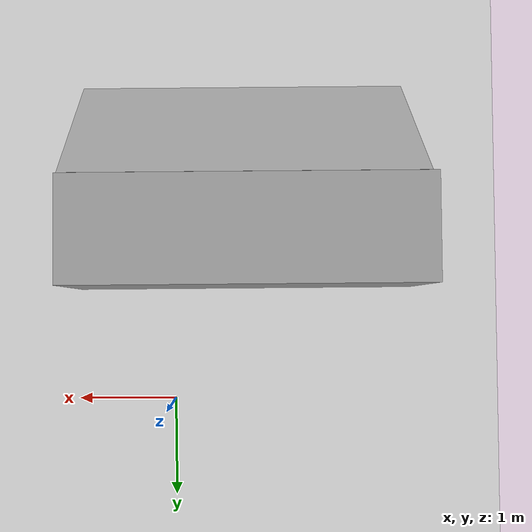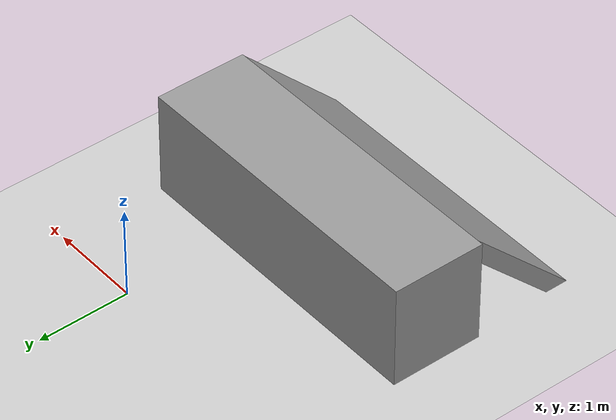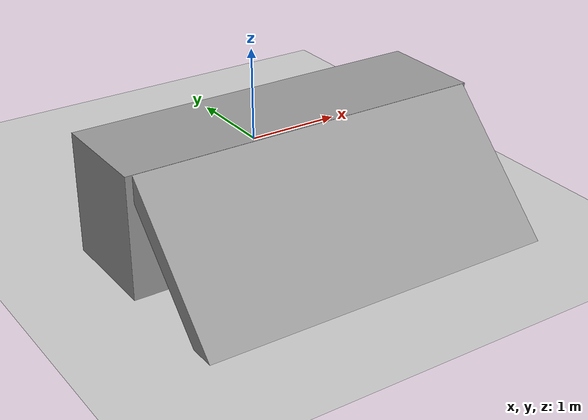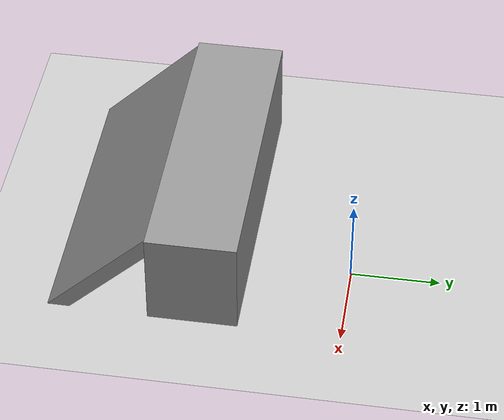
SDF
<sdf version="1.6">
 <world name="default">
  <light name="sun" type="directional">
   <pose>0 0 10 0 -0 0</pose>
   <diffuse>0.8 0.8 0.8 1</diffuse>
   <specular>0.1 0.1 0.1 1</specular>
   <attenuation>
    <range>1000</range>
    <constant>0.9</constant>
    <linear>0.01</linear>
    <quadratic>0.001</quadratic>
   </attenuation>
   <direction>-0.5 0.5 -1</direction>
  </light>
  <model name="ground_plane">
   <static>1</static>
   <link name="link">
    <collision name="collision">
     <geometry><plane><normal>0 0 1</normal><size>100 100</size></plane></geometry>
     <surface><friction><ode><mu>100</mu><mu2>50</mu2></ode></friction></surface>
    </collision>
    <visual name="visual">
     <cast_shadows>0</cast_shadows>
     <geometry><plane><normal>0 0 1</normal><size>100 100</size></plane></geometry>
     <material>
      <script><uri>file://media/materials/scripts/gazebo.material</uri><name>Gazebo/Grey</name></script>
     </material>
    </visual>
   </link>
  </model>
  <gravity>0 0 -9.8</gravity>
  <magnetic_field>6e-06 2.3e-05 -4.2e-05</magnetic_field>
  <atmosphere type="adiabatic"/>
  <physics name="default_physics" default="0" type="ode">
   <max_step_size>0.001</max_step_size>
   <real_time_factor>1</real_time_factor>
   <real_time_update_rate>1000</real_time_update_rate>
  </physics>
  <scene><ambient>0.4 0.4 0.4 1</ambient><background>0.7 0.7 0.7 1</background><shadows>1</shadows></scene>
  <spherical_coordinates>
   <surface_model>EARTH_WGS84</surface_model>
   <latitude_deg>0</latitude_deg>
   <longitude_deg>0</longitude_deg>
   <elevation>0</elevation>
   <heading_deg>0</heading_deg>
  </spherical_coordinates>
  <model name="xiepo">
   <link name="link_0">
    <pose>0.009421 -0.514044 0 0.785398 -0 0</pose>
    <inertial>
     <mass>0.986925</mass>
     <inertia>
      <ixx>0.231198</ixx>
      <ixy>0</ixy>
      <ixz>0</ixz>
      <iyy>0.926747</iyy>
      <iyz>0</iyz>
      <izz>1.15282</izz>
     </inertia>
    </inertial>
    <visual name="visual">
     <geometry><box><size>3.35217 1.66732 0.176605</size></box></geometry>
     <material>
      <lighting>1</lighting>
      <script><uri>file://media/materials/scripts/gazebo.material</uri><name>Gazebo/Grey</name></script>
      <ambient>0.3 0.3 0.3 1</ambient>
      <diffuse>0.7 0.7 0.7 1</diffuse>
      <specular>0.01 0.01 0.01 1</specular>
      <emissive>0 0 0 1</emissive>
      <shader type="vertex"><normal_map>__default__</normal_map></shader>
     </material>
    </visual>
    <collision name="collision">
     <geometry><box><size>3.35217 1.66732 0.176605</size></box></geometry>
     <surface>
      <friction>
       <ode><mu>1</mu><mu2>1</mu2><fdir1>0 0 0</fdir1><slip1>0</slip1><slip2>0</slip2></ode>
       <torsional>
        <coefficient>1</coefficient>
        <patch_radius>0</patch_radius>
        <surface_radius>0</surface_radius>
        <use_patch_radius>1</use_patch_radius>
        <ode><slip>0</slip></ode>
       </torsional>
      </friction>
      <bounce><restitution_coefficient>0</restitution_coefficient><threshold>1e+06</threshold></bounce>
      <contact>
       <collide_without_contact>0</collide_without_contact>
       <collide_without_contact_bitmask>1</collide_without_contact_bitmask>
       <collide_bitmask>1</collide_bitmask>
       <ode>
        <soft_cfm>0</soft_cfm>
        <soft_erp>0.2</soft_erp>
        <kp>1e+13</kp>
        <kd>1</kd>
        <max_vel>0.01</max_vel>
        <min_depth>0</min_depth>
       </ode>
       <bullet>
        <split_impulse>1</split_impulse>
        <split_impulse_penetration_threshold>-0.01</split_impulse_penetration_threshold>
        <soft_cfm>0</soft_cfm>
        <soft_erp>0.2</soft_erp>
        <kp>1e+13</kp>
        <kd>1</kd>
       </bullet>
      </contact>
     </surface>
    </collision>
   </link>
   <link name="link_1">
    <pose>-0.009421 0.514044 0 0 -0 0</pose>
    <inertial>
     <mass>4.49622</mass>
     <inertia><ixx>1.01456</ixx><ixy>0</ixy><ixz>0</ixz><iyy>5.07533</iyy><iyz>0</iyz><izz>4.81014</izz></inertia>
    </inertial>
    <visual name="visual">
     <geometry><box><size>3.44064 1 1.30681</size></box></geometry>
     <material>
      <lighting>1</lighting>
      <script><uri>file://media/materials/scripts/gazebo.material</uri><name>Gazebo/Grey</name></script>
      <ambient>0.3 0.3 0.3 1</ambient>
      <diffuse>0.7 0.7 0.7 1</diffuse>
      <specular>0.01 0.01 0.01 1</specular>
      <emissive>0 0 0 1</emissive>
     </material>
    </visual>
    <collision name="collision">
     <geometry><box><size>3.44064 1 1.30681</size></box></geometry>
     <surface>
      <friction>
       <ode><mu>1</mu><mu2>1</mu2><fdir1>0 0 0</fdir1><slip1>0</slip1><slip2>0</slip2></ode>
       <torsional>
        <coefficient>1</coefficient>
        <patch_radius>0</patch_radius>
        <surface_radius>0</surface_radius>
        <use_patch_radius>1</use_patch_radius>
        <ode><slip>0</slip></ode>
       </torsional>
      </friction>
      <bounce><restitution_coefficient>0</restitution_coefficient><threshold>1e+06</threshold></bounce>
      <contact>
       <collide_without_contact>0</collide_without_contact>
       <collide_without_contact_bitmask>1</collide_without_contact_bitmask>
       <collide_bitmask>1</collide_bitmask>
       <ode>
        <soft_cfm>0</soft_cfm>
        <soft_erp>0.2</soft_erp>
        <kp>1e+13</kp>
        <kd>1</kd>
        <max_vel>0.01</max_vel>
        <min_depth>0</min_depth>
       </ode>
       <bullet>
        <split_impulse>1</split_impulse>
        <split_impulse_penetration_threshold>-0.01</split_impulse_penetration_threshold>
        <soft_cfm>0</soft_cfm>
        <soft_erp>0.2</soft_erp>
        <kp>1e+13</kp>
        <kd>1</kd>
       </bullet>
      </contact>
     </surface>
    </collision>
   </link>
   <joint name="link_1_JOINT_0" type="fixed">
    <parent>link_1</parent>
    <child>link_0</child>
    <physics>
     <ode><limit><cfm>0</cfm><erp>0.2</erp></limit><suspension><cfm>0</cfm><erp>0.2</erp></suspension></ode>
    </physics>
   </joint>
   <static>1</static>
   <pose>-0.724099 -2.15041 0.470251 0 -0 0</pose>
  </model>
 </world>
</sdf>
